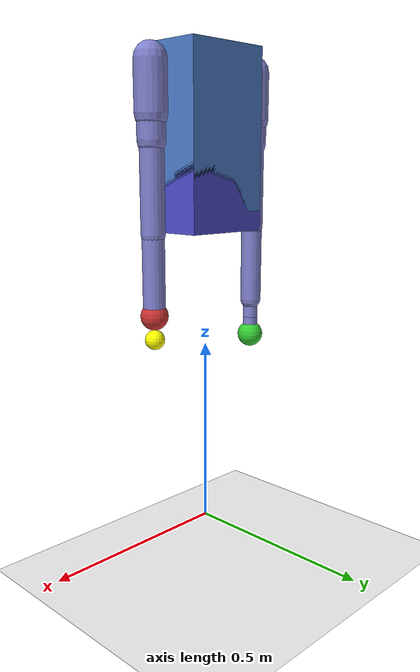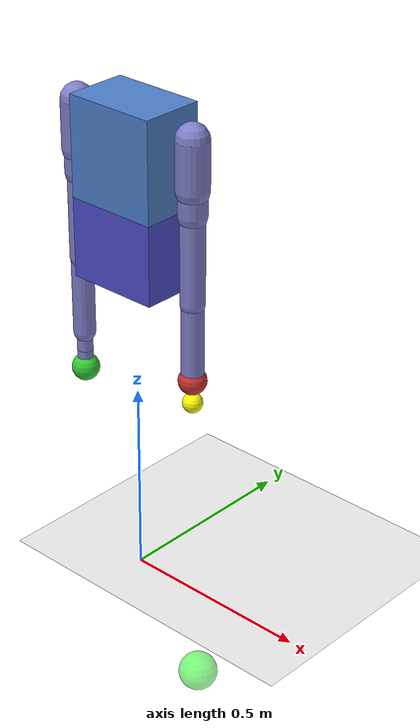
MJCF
<!--
  g1_upper.xml — Unitree G1 upper-body MuJoCo MJCF model
  Fixed base (no freejoint) — pelvis welded to world for upper-body reaching task.
-->
<mujoco model="g1_upper_body">
  <compiler angle="radian" meshdir="." autolimits="true"/>

  <option timestep="0.005" gravity="0 0 -9.81" iterations="100" solver="Newton"
          tolerance="1e-10"/>

  <default>
    <joint damping="5.0" armature="0.05" frictionloss="0.01"/>
    <geom contype="1" conaffinity="1" condim="3" friction="0.8 0.02 0.001" rgba="0.5 0.5 0.8 1"/>
    <position kp="100" kv="10"/>
    <site size="0.02" rgba="1 0 0 1"/>
  </default>

  <worldbody>
    <!-- Ground plane -->
    <geom name="floor" type="plane" size="5 5 0.1" rgba="0.7 0.7 0.7 1"
          contype="1" conaffinity="1"/>

    <!-- Pelvis: FIXED to world (no freejoint) -->
    <body name="pelvis" pos="0 0 0.9">
      <geom name="pelvis_geom" type="box" size="0.12 0.08 0.1" mass="10.0"
            rgba="0.3 0.3 0.8 1" contype="0" conaffinity="0"/>

      <!-- Torso -->
      <body name="torso_link" pos="0 0 0.15">
        <joint name="torso_joint" type="hinge" axis="0 0 1"
               range="-0.5 0.5" damping="10.0" armature="0.1"/>
        <geom name="torso_geom" type="box" size="0.12 0.08 0.2" mass="8.0"
              rgba="0.3 0.5 0.8 1" contype="0" conaffinity="0"/>

        <!-- ── LEFT ARM ──────────────────────────────────────────── -->
        <body name="left_shoulder_link" pos="-0.18 0 0.15">
          <joint name="left_shoulder_pitch_joint" type="hinge" axis="0 1 0"
                 range="-3.14 2.09" damping="5.0" armature="0.05"/>
          <geom type="capsule" fromto="0 0 0 0 0 -0.12" size="0.04" mass="1.5"
                contype="0" conaffinity="0"/>

          <body name="left_shoulder_roll_link" pos="0 0 -0.12">
            <joint name="left_shoulder_roll_joint" type="hinge" axis="1 0 0"
                   range="-1.57 2.87" damping="5.0" armature="0.05"/>
            <geom type="capsule" fromto="0 0 0 0 0 -0.06" size="0.035" mass="0.8"
                  contype="0" conaffinity="0"/>

            <body name="left_shoulder_yaw_link" pos="0 0 -0.06">
              <joint name="left_shoulder_yaw_joint" type="hinge" axis="0 0 1"
                     range="-1.57 1.57" damping="3.0" armature="0.02"/>
              <geom type="capsule" fromto="0 0 0 0 0 -0.22" size="0.03" mass="1.2"
                    contype="0" conaffinity="0"/>

              <body name="left_elbow_link" pos="0 0 -0.22">
                <joint name="left_elbow_joint" type="hinge" axis="0 1 0"
                       range="-1.57 2.09" damping="3.0" armature="0.02"/>
                <geom type="capsule" fromto="0 0 0 0 0 -0.2" size="0.028" mass="0.9"
                      contype="0" conaffinity="0"/>

                <body name="left_wrist_roll_link" pos="0 0 -0.2">
                  <joint name="left_wrist_roll_joint" type="hinge" axis="1 0 0"
                         range="-1.57 1.57" damping="1.0" armature="0.01"/>
                  <geom type="capsule" fromto="0 0 0 0 0 -0.05" size="0.02" mass="0.2"
                        contype="0" conaffinity="0"/>

                  <body name="left_wrist_pitch_link" pos="0 0 -0.05">
                    <joint name="left_wrist_pitch_joint" type="hinge" axis="0 1 0"
                           range="-1.57 1.57" damping="1.0" armature="0.01"/>
                    <geom type="capsule" fromto="0 0 0 0 0 -0.05" size="0.02" mass="0.2"
                          contype="0" conaffinity="0"/>

                    <body name="left_wrist_yaw_link" pos="0 0 -0.05">
                      <joint name="left_wrist_yaw_joint" type="hinge" axis="0 0 1"
                             range="-1.57 1.57" damping="1.0" armature="0.01"/>
                      <geom type="sphere" size="0.035" mass="0.3"
                            rgba="0.2 0.8 0.2 1" contype="0" conaffinity="0"/>
                    </body>
                  </body>
                </body>
              </body>
            </body>
          </body>
        </body>

        <!-- ── RIGHT ARM ─────────────────────────────────────────── -->
        <body name="right_shoulder_link" pos="0.18 0 0.15">
          <joint name="right_shoulder_pitch_joint" type="hinge" axis="0 1 0"
                 range="-3.14 2.09" damping="5.0" armature="0.05"/>
          <geom type="capsule" fromto="0 0 0 0 0 -0.12" size="0.04" mass="1.5"
                contype="0" conaffinity="0"/>

          <body name="right_shoulder_roll_link" pos="0 0 -0.12">
            <joint name="right_shoulder_roll_joint" type="hinge" axis="1 0 0"
                   range="-2.87 1.57" damping="5.0" armature="0.05"/>
            <geom type="capsule" fromto="0 0 0 0 0 -0.06" size="0.035" mass="0.8"
                  contype="0" conaffinity="0"/>

            <body name="right_shoulder_yaw_link" pos="0 0 -0.06">
              <joint name="right_shoulder_yaw_joint" type="hinge" axis="0 0 1"
                     range="-1.57 1.57" damping="3.0" armature="0.02"/>
              <geom type="capsule" fromto="0 0 0 0 0 -0.22" size="0.03" mass="1.2"
                    contype="0" conaffinity="0"/>

              <body name="right_elbow_link" pos="0 0 -0.22">
                <joint name="right_elbow_joint" type="hinge" axis="0 1 0"
                       range="-1.57 2.09" damping="3.0" armature="0.02"/>
                <geom type="capsule" fromto="0 0 0 0 0 -0.2" size="0.028" mass="0.9"
                      contype="0" conaffinity="0"/>

                <body name="right_wrist_roll_link" pos="0 0 -0.2">
                  <joint name="right_wrist_roll_joint" type="hinge" axis="1 0 0"
                         range="-1.57 1.57" damping="1.0" armature="0.01"/>
                  <geom type="sphere" size="0.035" mass="0.5"
                        rgba="0.8 0.2 0.2 1" contype="0" conaffinity="0"/>

                  <!-- RIGHT HAND END-EFFECTOR SITE -->
                  <site name="right_hand_site" pos="0 0 -0.06" size="0.025" rgba="1 1 0 1"/>
                </body>
              </body>
            </body>
          </body>
        </body>

      </body><!-- torso -->
    </body><!-- pelvis — fixed, no joint -->

    <!-- Target visualisation sphere (moved by env at each reset) -->
    <body name="target_body" pos="0.2 0 -0.25" mocap="true">
      <geom name="target_geom" type="sphere" size="0.05"
            rgba="0 1 0 0.5" contype="0" conaffinity="0"/>
    </body>

  </worldbody>

  <!-- ── Actuators (position control) ──────────────────────────────────── -->
  <actuator>
    <position name="torso_act"                  joint="torso_joint"                 kp="200" kv="20"/>
    <position name="left_shoulder_pitch_act"    joint="left_shoulder_pitch_joint"   kp="150" kv="15"/>
    <position name="left_shoulder_roll_act"     joint="left_shoulder_roll_joint"    kp="150" kv="15"/>
    <position name="left_shoulder_yaw_act"      joint="left_shoulder_yaw_joint"     kp="80"  kv="8"/>
    <position name="left_elbow_act"             joint="left_elbow_joint"            kp="100" kv="10"/>
    <position name="left_wrist_roll_act"        joint="left_wrist_roll_joint"       kp="30"  kv="3"/>
    <position name="left_wrist_pitch_act"       joint="left_wrist_pitch_joint"      kp="30"  kv="3"/>
    <position name="left_wrist_yaw_act"         joint="left_wrist_yaw_joint"        kp="30"  kv="3"/>
    <position name="right_shoulder_pitch_act"   joint="right_shoulder_pitch_joint"  kp="150" kv="15"/>
    <position name="right_shoulder_roll_act"    joint="right_shoulder_roll_joint"   kp="150" kv="15"/>
    <position name="right_shoulder_yaw_act"     joint="right_shoulder_yaw_joint"    kp="80"  kv="8"/>
    <position name="right_elbow_act"            joint="right_elbow_joint"           kp="100" kv="10"/>
    <position name="right_wrist_roll_act"       joint="right_wrist_roll_joint"      kp="30"  kv="3"/>
  </actuator>

  <sensor>
    <framepos name="ee_pos_sensor" objtype="site" objname="right_hand_site"/>
  </sensor>

</mujoco>
